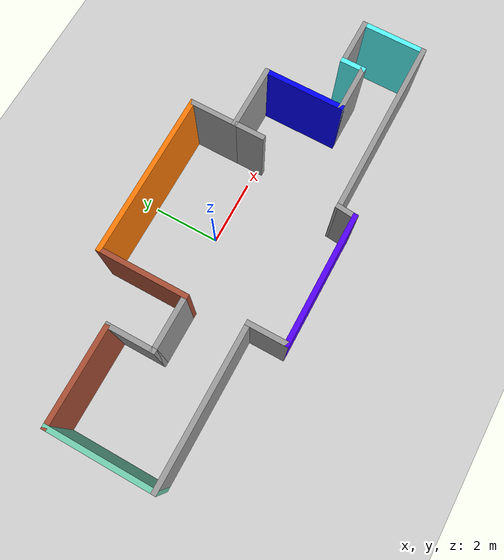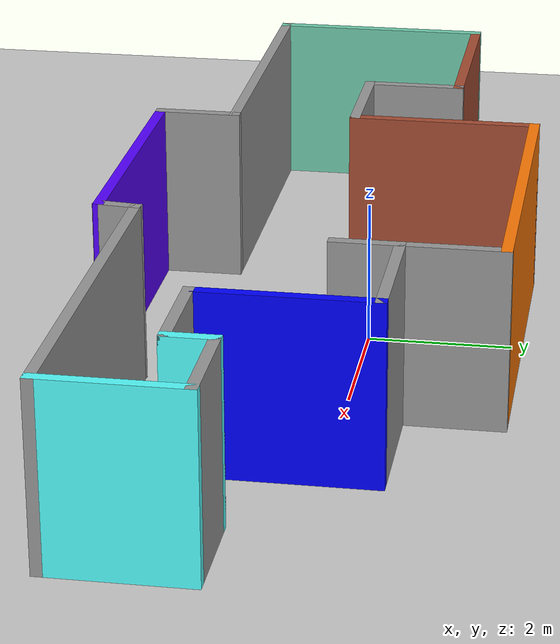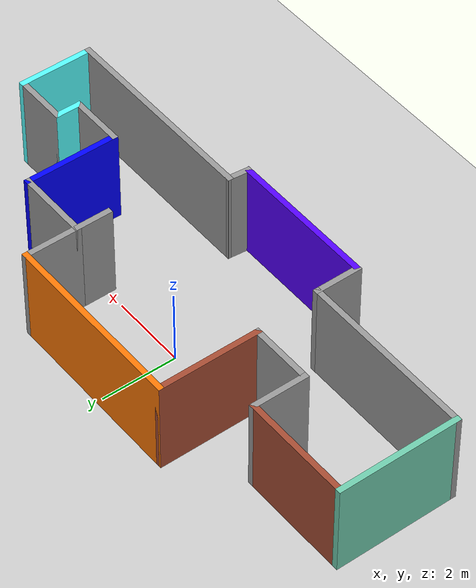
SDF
<sdf version="1.6">
 <world name="default">
  <light name="sun" type="directional">
   <pose>0 0 10 0 -0 0</pose>
   <diffuse>0.8 0.8 0.8 1</diffuse>
   <specular>0.2 0.2 0.2 1</specular>
   <attenuation>
    <range>1000</range>
    <constant>0.9</constant>
    <linear>0.01</linear>
    <quadratic>0.001</quadratic>
   </attenuation>
   <direction>-0.5 0.1 -0.9</direction>
  </light>
  <model name="ground_plane">
   <static>1</static>
   <link name="link">
    <collision name="collision">
     <geometry><plane><normal>0 0 1</normal><size>100 100</size></plane></geometry>
     <surface>
      <contact><collide_bitmask>65535</collide_bitmask></contact>
      <friction><ode><mu>100</mu><mu2>50</mu2></ode></friction>
     </surface>
    </collision>
    <visual name="visual">
     <cast_shadows>0</cast_shadows>
     <geometry><plane><normal>0 0 1</normal><size>100 100</size></plane></geometry>
     <material>
      <script><uri>file://media/materials/scripts/gazebo.material</uri><name>Gazebo/Grey</name></script>
     </material>
    </visual>
   </link>
  </model>
  <physics name="default_physics" default="0" type="ode">
   <max_step_size>0.01</max_step_size>
   <real_time_factor>1</real_time_factor>
   <real_time_update_rate>100</real_time_update_rate>
  </physics>
  <gravity>0 0 -9.8</gravity>
  <magnetic_field>6e-06 2.3e-05 -4.2e-05</magnetic_field>
  <atmosphere type="adiabatic"/>
  <scene><ambient>0.4 0.4 0.4 1</ambient><background>0.7 0.7 0.7 1</background><shadows>1</shadows></scene>
  <spherical_coordinates>
   <surface_model>EARTH_WGS84</surface_model>
   <latitude_deg>0</latitude_deg>
   <longitude_deg>0</longitude_deg>
   <elevation>0</elevation>
   <heading_deg>0</heading_deg>
  </spherical_coordinates>
  <model name="anothertestbuilding">
   <pose>0.200256 -0.650055 0 0 -0 0</pose>
   <link name="Wall_10">
    <collision name="Wall_10_Collision">
     <geometry><box><size>5 0.15 2.5</size></box></geometry>
     <pose>0 0 1.25 0 -0 0</pose>
    </collision>
    <visual name="Wall_10_Visual">
     <pose>0 0 1.25 0 -0 0</pose>
     <geometry><box><size>5 0.15 2.5</size></box></geometry>
     <material>
      <script><uri>file://media/materials/scripts/gazebo.material</uri><name>Gazebo/Grey</name></script>
      <ambient>0.996078 0.47451 0.0196078 1</ambient>
     </material>
     <meta><layer>0</layer></meta>
    </visual>
    <pose>-0.05 2.72854 0 0 -0 0</pose>
   </link>
   <link name="Wall_11">
    <collision name="Wall_11_Collision">
     <geometry><box><size>1.5 0.15 2.5</size></box></geometry>
     <pose>0 0 1.25 0 -0 0</pose>
    </collision>
    <visual name="Wall_11_Visual">
     <pose>0 0 1.25 0 -0 0</pose>
     <geometry><box><size>1.5 0.15 2.5</size></box></geometry>
     <material>
      <script><uri>file://media/materials/scripts/gazebo.material</uri><name>Gazebo/Grey</name></script>
      <ambient>1 1 1 1</ambient>
     </material>
     <meta><layer>0</layer></meta>
    </visual>
    <pose>2.375 2.05355 0 0 0 -1.5708</pose>
   </link>
   <link name="Wall_12">
    <collision name="Wall_12_Collision">
     <geometry><box><size>2 0.15 2.5</size></box></geometry>
     <pose>0 0 1.25 0 -0 0</pose>
    </collision>
    <visual name="Wall_12_Visual">
     <pose>0 0 1.25 0 -0 0</pose>
     <geometry><box><size>2 0.15 2.5</size></box></geometry>
     <material>
      <script><uri>file://media/materials/scripts/gazebo.material</uri><name>Gazebo/Grey</name></script>
      <ambient>1 1 1 1</ambient>
     </material>
     <meta><layer>0</layer></meta>
    </visual>
    <pose>3.3 1.37854 0 0 -0 0</pose>
   </link>
   <link name="Wall_13">
    <collision name="Wall_13_Collision">
     <geometry><box><size>2.5 0.15 2.5</size></box></geometry>
     <pose>0 0 1.25 0 -0 0</pose>
    </collision>
    <visual name="Wall_13_Visual">
     <pose>0 0 1.25 0 -0 0</pose>
     <geometry><box><size>2.5 0.15 2.5</size></box></geometry>
     <material>
      <script><uri>file://media/materials/scripts/gazebo.material</uri><name>Gazebo/Grey</name></script>
      <ambient>0 0 1 1</ambient>
     </material>
     <meta><layer>0</layer></meta>
    </visual>
    <pose>4.225 0.203545 0 0 0 -1.5708</pose>
   </link>
   <link name="Wall_14">
    <collision name="Wall_14_Collision">
     <geometry><box><size>1.5 0.15 2.5</size></box></geometry>
     <pose>0 0 1.25 0 -0 0</pose>
    </collision>
    <visual name="Wall_14_Visual">
     <pose>0 0 1.25 0 -0 0</pose>
     <geometry><box><size>1.5 0.15 2.5</size></box></geometry>
     <material>
      <script><uri>file://media/materials/scripts/gazebo.material</uri><name>Gazebo/Grey</name></script>
      <ambient>1 1 1 1</ambient>
     </material>
     <meta><layer>0</layer></meta>
    </visual>
    <pose>4.9 -0.971455 0 0 -0 0</pose>
   </link>
   <link name="Wall_15">
    <collision name="Wall_15_Collision">
     <geometry><box><size>0.75 0.15 2.5</size></box></geometry>
     <pose>0 0 1.25 0 -0 0</pose>
    </collision>
    <visual name="Wall_15_Visual">
     <pose>0 0 1.25 0 -0 0</pose>
     <geometry><box><size>0.75 0.15 2.5</size></box></geometry>
     <material>
      <script><uri>file://media/materials/scripts/gazebo.material</uri><name>Gazebo/Grey</name></script>
      <ambient>0.333333 1 1 1</ambient>
     </material>
     <meta><layer>0</layer></meta>
    </visual>
    <pose>5.575 -0.671455 0 0 -0 1.5708</pose>
   </link>
   <link name="Wall_16">
    <collision name="Wall_16_Collision">
     <geometry><box><size>1.5 0.15 2.5</size></box></geometry>
     <pose>0 0 1.25 0 -0 0</pose>
    </collision>
    <visual name="Wall_16_Visual">
     <pose>0 0 1.25 0 -0 0</pose>
     <geometry><box><size>1.5 0.15 2.5</size></box></geometry>
     <material>
      <script><uri>file://media/materials/scripts/gazebo.material</uri><name>Gazebo/Grey</name></script>
      <ambient>1 1 1 1</ambient>
     </material>
     <meta><layer>0</layer></meta>
    </visual>
    <pose>6.25 -0.371455 0 0 -0 0</pose>
   </link>
   <link name="Wall_17">
    <collision name="Wall_17_Collision">
     <geometry><box><size>2 0.15 2.5</size></box></geometry>
     <pose>0 0 1.25 0 -0 0</pose>
    </collision>
    <visual name="Wall_17_Visual">
     <pose>0 0 1.25 0 -0 0</pose>
     <geometry><box><size>2 0.15 2.5</size></box></geometry>
     <material>
      <script><uri>file://media/materials/scripts/gazebo.material</uri><name>Gazebo/Grey</name></script>
      <ambient>0.333333 1 1 1</ambient>
     </material>
     <meta><layer>0</layer></meta>
    </visual>
    <pose>6.925 -1.29645 0 0 0 -1.5708</pose>
   </link>
   <link name="Wall_19">
    <collision name="Wall_19_Collision">
     <geometry><box><size>5.5 0.15 2.5</size></box></geometry>
     <pose>0 0 1.25 0 -0 0</pose>
    </collision>
    <visual name="Wall_19_Visual">
     <pose>0 0 1.25 0 -0 0</pose>
     <geometry><box><size>5.5 0.15 2.5</size></box></geometry>
     <material>
      <script><uri>file://media/materials/scripts/gazebo.material</uri><name>Gazebo/Grey</name></script>
      <ambient>1 1 1 1</ambient>
     </material>
     <meta><layer>0</layer></meta>
    </visual>
    <pose>4.25 -2.22146 0 0 -0 3.14159</pose>
   </link>
   <link name="Wall_21">
    <collision name="Wall_21_Collision">
     <geometry><box><size>1.25 0.15 2.5</size></box></geometry>
     <pose>0 0 1.25 0 -0 0</pose>
    </collision>
    <visual name="Wall_21_Visual">
     <pose>0 0 1.25 0 -0 0</pose>
     <geometry><box><size>1.25 0.15 2.5</size></box></geometry>
     <material>
      <script><uri>file://media/materials/scripts/gazebo.material</uri><name>Gazebo/Grey</name></script>
      <ambient>1 1 1 1</ambient>
     </material>
     <meta><layer>0</layer></meta>
    </visual>
    <pose>-2.325 -2.17145 0 0 0 -1.5708</pose>
   </link>
   <link name="Wall_22">
    <collision name="Wall_22_Collision">
     <geometry><box><size>4 0.15 2.5</size></box></geometry>
     <pose>0 0 1.25 0 -0 0</pose>
    </collision>
    <visual name="Wall_22_Visual">
     <pose>0 0 1.25 0 -0 0</pose>
     <geometry><box><size>4 0.15 2.5</size></box></geometry>
     <material>
      <script><uri>file://media/materials/scripts/gazebo.material</uri><name>Gazebo/Grey</name></script>
      <ambient>0.333333 0 1 1</ambient>
     </material>
     <meta><layer>0</layer></meta>
    </visual>
    <pose>-0.4 -2.72146 0 0 -0 0</pose>
   </link>
   <link name="Wall_23">
    <collision name="Wall_23_Collision">
     <geometry><box><size>0.652494 0.15 2.5</size></box></geometry>
     <pose>0 0 1.25 0 -0 0</pose>
    </collision>
    <visual name="Wall_23_Visual">
     <pose>0 0 1.25 0 -0 0</pose>
     <geometry><box><size>0.652494 0.15 2.5</size></box></geometry>
     <material>
      <script><uri>file://media/materials/scripts/gazebo.material</uri><name>Gazebo/Grey</name></script>
      <ambient>1 1 1 1</ambient>
     </material>
     <meta><layer>0</layer></meta>
    </visual>
    <pose>1.55 -2.47146 0 0 -0 1.47113</pose>
   </link>
   <link name="Wall_25">
    <collision name="Wall_25_Collision">
     <geometry><box><size>1 0.15 2.5</size></box></geometry>
     <pose>0 0 1.25 0 -0 0</pose>
    </collision>
    <visual name="Wall_25_Visual">
     <pose>0 0 1.25 0 -0 0</pose>
     <geometry><box><size>1 0.15 2.5</size></box></geometry>
     <material>
      <script><uri>file://media/materials/scripts/gazebo.material</uri><name>Gazebo/Grey</name></script>
      <ambient>1 1 1 1</ambient>
     </material>
     <meta><layer>0</layer></meta>
    </visual>
    <pose>2.375 0.953545 0 0 0 -1.5708</pose>
   </link>
   <link name="Wall_4">
    <collision name="Wall_4_Collision">
     <geometry><box><size>4.75 0.15 2.5</size></box></geometry>
     <pose>0 0 1.25 0 -0 0</pose>
    </collision>
    <visual name="Wall_4_Visual">
     <pose>0 0 1.25 0 -0 0</pose>
     <geometry><box><size>4.75 0.15 2.5</size></box></geometry>
     <material>
      <script><uri>file://media/materials/scripts/gazebo.material</uri><name>Gazebo/Grey</name></script>
      <ambient>1 1 1 1</ambient>
     </material>
     <meta><layer>0</layer></meta>
    </visual>
    <pose>-4.625 -1.62146 0 0 -0 3.14159</pose>
   </link>
   <link name="Wall_5">
    <collision name="Wall_5_Collision">
     <geometry><box><size>3.25 0.15 2.5</size></box></geometry>
     <pose>0 0 1.25 0 -0 0</pose>
    </collision>
    <visual name="Wall_5_Visual">
     <pose>0 0 1.25 0 -0 0</pose>
     <geometry><box><size>3.25 0.15 2.5</size></box></geometry>
     <material>
      <script><uri>file://media/materials/scripts/gazebo.material</uri><name>Gazebo/Grey</name></script>
      <ambient>0.435294 0.796078 0.67451 1</ambient>
     </material>
     <meta><layer>0</layer></meta>
    </visual>
    <pose>-6.925 -0.071455 0 0 -0 1.5708</pose>
   </link>
   <link name="Wall_6">
    <collision name="Wall_6_Collision">
     <geometry><box><size>3 0.15 2.5</size></box></geometry>
     <pose>0 0 1.25 0 -0 0</pose>
    </collision>
    <visual name="Wall_6_Visual">
     <pose>0 0 1.25 0 -0 0</pose>
     <geometry><box><size>3 0.15 2.5</size></box></geometry>
     <material>
      <script><uri>file://media/materials/scripts/gazebo.material</uri><name>Gazebo/Bricks</name></script>
      <ambient>1 1 1 1</ambient>
     </material>
     <meta><layer>0</layer></meta>
    </visual>
    <pose>-5.5 1.47854 0 0 -0 0</pose>
   </link>
   <link name="Wall_7">
    <collision name="Wall_7_Collision">
     <geometry><box><size>1.5 0.15 2.5</size></box></geometry>
     <pose>0 0 1.25 0 -0 0</pose>
    </collision>
    <visual name="Wall_7_Visual">
     <pose>0 0 1.25 0 -0 0</pose>
     <geometry><box><size>1.5 0.15 2.5</size></box></geometry>
     <material>
      <script><uri>file://media/materials/scripts/gazebo.material</uri><name>Gazebo/Grey</name></script>
      <ambient>1 1 1 1</ambient>
     </material>
     <meta><layer>0</layer></meta>
    </visual>
    <pose>-4.075 0.803545 0 0 0 -1.5708</pose>
   </link>
   <link name="Wall_8">
    <collision name="Wall_8_Collision">
     <geometry><box><size>1.75 0.15 2.5</size></box></geometry>
     <pose>0 0 1.25 0 -0 0</pose>
    </collision>
    <visual name="Wall_8_Visual">
     <pose>0 0 1.25 0 -0 0</pose>
     <geometry><box><size>1.75 0.15 2.5</size></box></geometry>
     <material>
      <script><uri>file://media/materials/scripts/gazebo.material</uri><name>Gazebo/Grey</name></script>
      <ambient>1 1 1 1</ambient>
     </material>
     <meta><layer>0</layer></meta>
    </visual>
    <pose>-3.275 0.128545 0 0 -0 0</pose>
   </link>
   <link name="Wall_9">
    <collision name="Wall_9_Collision">
     <geometry><box><size>2.75 0.15 2.5</size></box></geometry>
     <pose>0 0 1.25 0 -0 0</pose>
    </collision>
    <visual name="Wall_9_Visual">
     <pose>0 0 1.25 0 -0 0</pose>
     <geometry><box><size>2.75 0.15 2.5</size></box></geometry>
     <material>
      <script><uri>file://media/materials/scripts/gazebo.material</uri><name>Gazebo/Bricks</name></script>
      <ambient>1 1 1 1</ambient>
     </material>
     <meta><layer>0</layer></meta>
    </visual>
    <pose>-2.475 1.42854 0 0 -0 1.5708</pose>
   </link>
   <static>1</static>
  </model>
 </world>
</sdf>
